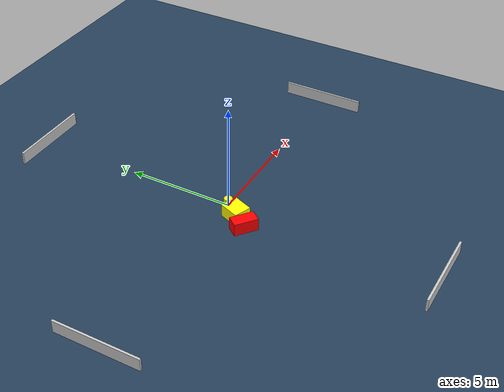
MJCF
<?xml version="1.0" ?>
<mujoco model="generated_environment">
  <option timestep="0.01" integrator="RK4" cone="elliptic"/>
  <default>
    <geom density="1"/>
  </default>
  <asset>
    <texture builtin="gradient" height="3072" name="skybox" rgb1="0.3 0.5 0.7" rgb2="0 0 0" type="skybox" width="512"/>
    <texture builtin="checker" height="300" name="groundplane" rgb1="0.2 0.3 0.4" rgb2="0.1 0.2 0.3" type="2d" width="300"/>
    <material name="groundplane" reflectance="0.2" texrepeat="5 5" texture="groundplane"/>
  </asset>
  <worldbody>
    <light dir="0 0 -1" directional="true" pos="0 0 1.5"/>
    <geom condim="3" friction="0.5 0.005 0.001" material="groundplane" name="floor" pos="0 0 0" size="0 0 0.05" type="plane"/>
    <body name="walls">
      <geom name="wall_1" condim="4" pos="-10.0 0.0 0.3" rgba="0.800000011920929 0.800000011920929 0.800000011920929 1.0" size="0.05 2.0 0.3" type="box"/>
      <geom name="wall_2" condim="4" pos="10.0 0.0 0.3" rgba="0.800000011920929 0.800000011920929 0.800000011920929 1.0" size="0.05 2.0 0.3" type="box"/>
      <geom name="wall_3" condim="4" pos="0.0 -10.0 0.3" rgba="0.800000011920929 0.800000011920929 0.800000011920929 1.0" size="2.0 0.05 0.3" type="box"/>
      <geom name="wall_4" condim="4" pos="0.0 10.0 0.3" rgba="0.800000011920929 0.800000011920929 0.800000011920929 1.0" size="2.0 0.05 0.3" type="box"/>
    </body>
    <body name="robot">
      <joint name="joint_x" type="slide" pos="0 0 0" axis="1 0 0"/>
      <joint name="joint_y" type="slide" pos="0 0 0" axis="0 1 0"/>
      <geom name="robot" type="cylinder" pos="0.0 0.0 0.2" size="0.2 0.2 0.0" mass="5.0" friction="1.0 0.005 0.0001" condim="4" rgba="1.0 1.0 0.0 1.0"/>
    </body>
    <body name="obstacle_1_movable">
      <geom name="obstacle_1_movable" condim="4" pos="-0.5628751985428859 -0.6945536708800372 0.3" euler="0 0 158.2077910800799" friction="0.0 0.005 0.001" rgba="1.0 1.0 0.0 1.0" size="0.4215375770574497 0.4778452201026413 0.3" type="box" mass="0.1"/>
      <joint type="free"/>
    </body>
    <body name="obstacle_2_static">
      <geom name="obstacle_2_static" condim="4" pos="-1.1134707160535646 -1.3979894381500615 0.3" euler="0 0 141.79038521879048" friction="0.0 0.005 0.001" rgba="1.0 0.0 0.0 1.0" size="0.5641741991582299 0.2915044958244001 0.3" type="box"/>
    </body>
  </worldbody>
  <actuator>
    <motor name="actuator_x" joint="joint_x" gear="1" ctrlrange="-1 1"/>
    <motor name="actuator_y" joint="joint_y" gear="1" ctrlrange="-1 1"/>
  </actuator>
</mujoco>
